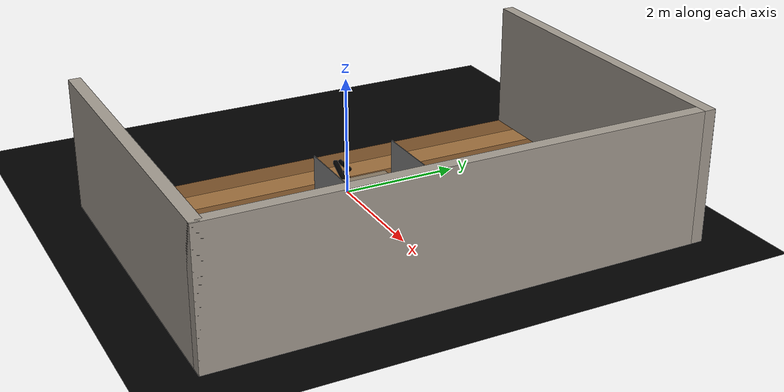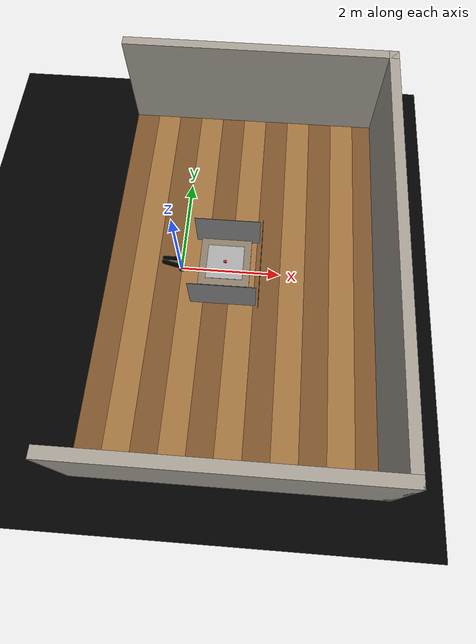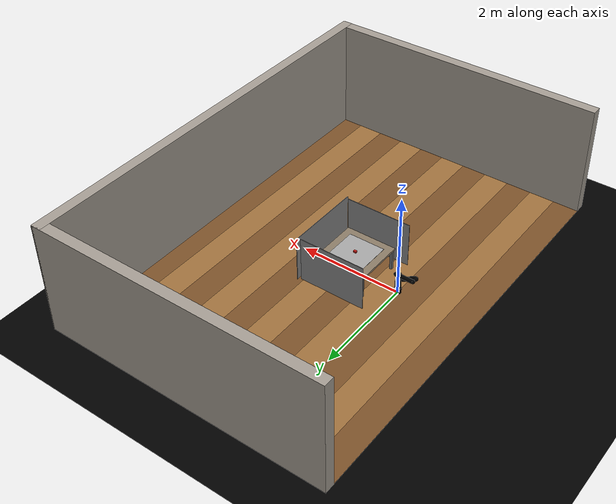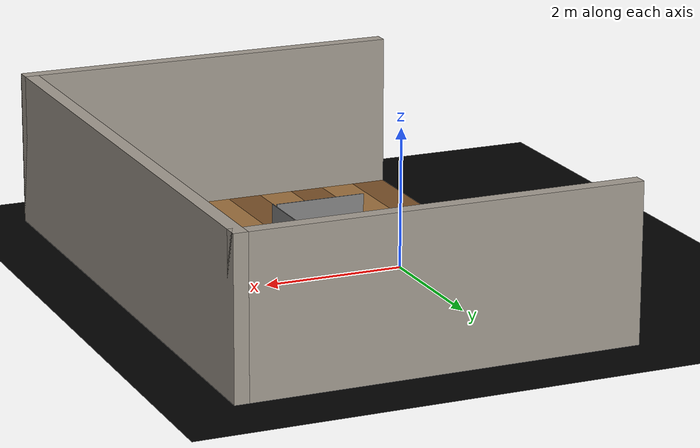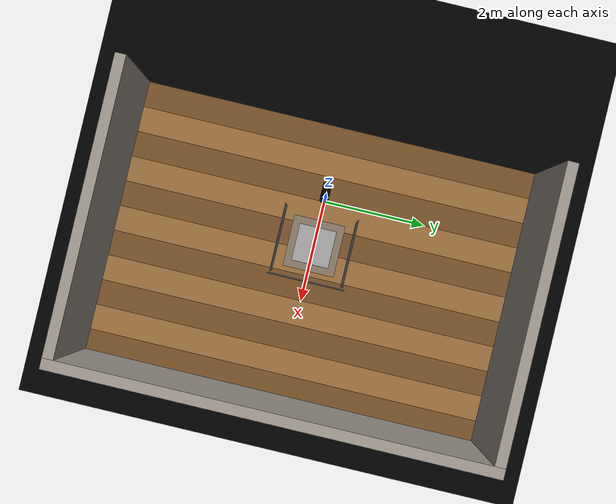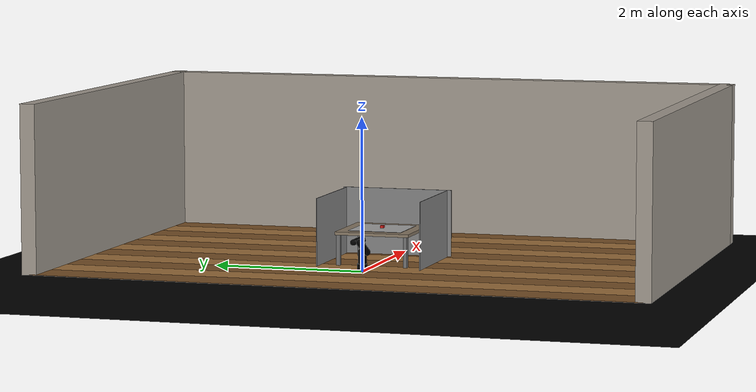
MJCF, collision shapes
<mujoco model="eMeetArm_RL">
  <!-- meshdir 指向描述包 meshes（含 V2 云台 gimbal_v2/ 子目录）；
       原值 "meshes" 指向不存在的 sim/meshes，模型加载即失败 -->
  <compiler meshdir="../../robot_arm_description/meshes" eulerseq="XYZ" angle="radian"/>

  <option timestep="0.002" gravity="0 0 -9.81" integrator="implicitfast"/>

  <visual>
    <headlight diffuse="0.8 0.8 0.8" ambient="0.3 0.3 0.3" specular="0.0 0.0 0.0"/>
    <rgba haze="0.15 0.25 0.35 1"/>
  </visual>

  <asset>
    <mesh name="base_link" file="base_link.STL"/>
    <mesh name="Link1"     file="Link1.STL"/>
    <mesh name="Link2"     file="Link2.STL"/>
    <mesh name="Link3"     file="Link3.STL"/>
    <!-- 云台 V2 网格：**不在任何包里放 STL 或符号链接**，直接跨包相对引用。
         路径基准 = meshdir(../../robot_arm_description/meshes)，上溯 3 级到 src/E7009
         再进 robot_gimbal_V2 包。本文件由 emeet_arm_env.py 从 src/ 直接加载。 -->
    <mesh name="g_base"  file="../../../robot_gimbal_V2/robot_gimbal_description_v2/meshes/gimbal_base_link.STL"/>
    <mesh name="g_Cam1"  file="../../../robot_gimbal_V2/robot_gimbal_description_v2/meshes/Cam1.STL"/>
    <mesh name="g_Tof"   file="../../../robot_gimbal_V2/robot_gimbal_description_v2/meshes/Tof.STL"/>
    <mesh name="g_Link4" file="../../../robot_gimbal_V2/robot_gimbal_description_v2/meshes/Link4.STL"/>
    <mesh name="g_Link5" file="../../../robot_gimbal_V2/robot_gimbal_description_v2/meshes/Link5.STL"/>
    <mesh name="g_Link6" file="../../../robot_gimbal_V2/robot_gimbal_description_v2/meshes/Link6.STL"/>
    <mesh name="g_tool0" file="../../../robot_gimbal_V2/robot_gimbal_description_v2/meshes/tool0.STL"/>
    <mesh name="g_Cam0"  file="../../../robot_gimbal_V2/robot_gimbal_description_v2/meshes/Cam0.STL"/>
    <material name="arm_grey"   rgba="0.898 0.918 0.929 1"/>
    <material name="joint_grey" rgba="0.698 0.698 0.698 1"/>
  </asset>

  <default>
    <joint limited="true"/>
    <default class="visual">
      <geom contype="0" conaffinity="0" group="0"/>
    </default>
    <default class="robot_col">
      <geom contype="2" conaffinity="1" group="3" rgba="0 0 0 0"/>
    </default>
    <default class="world_col">
      <geom contype="1" conaffinity="3" group="0"/>
    </default>
  </default>

  <worldbody>
    <!-- ── Lighting ────────────────────────────────────────────────────────── -->
    <light name="overhead" pos="0.75 0 3.0" dir="0 0 -1"
           diffuse="0.92 0.92 0.88" specular="0.3 0.3 0.3"/>
    <light name="side"     pos="1 1 1.5" dir="-1 -1 -1"
           diffuse="0.4 0.4 0.4"/>
    <light name="fill"     pos="-0.3 0.5 1.2"
           diffuse="0.55 0.55 0.60" specular="0.1 0.1 0.1"
           attenuation="0.3 0.1 0.01" cutoff="5"/>

    <geom name="ground_col" class="world_col" type="plane" size="5 5 0.1" rgba="0 0 0 0"/>

    <!-- ── Wood floor (visual) ──────────────────────────────────────────── -->
    <geom name="plank_d0" type="box" size="0.25 4.0 0.004"
          pos="-1.25 0 0.004" rgba="0.48 0.32 0.16 1" contype="0" conaffinity="0"/>
    <geom name="plank_l0" type="box" size="0.25 4.0 0.004"
          pos="-0.75 0 0.004" rgba="0.62 0.44 0.24 1" contype="0" conaffinity="0"/>
    <geom name="plank_d1" type="box" size="0.25 4.0 0.004"
          pos="-0.25 0 0.004" rgba="0.48 0.32 0.16 1" contype="0" conaffinity="0"/>
    <geom name="plank_l1" type="box" size="0.25 4.0 0.004"
          pos="0.25 0 0.004" rgba="0.62 0.44 0.24 1" contype="0" conaffinity="0"/>
    <geom name="plank_d2" type="box" size="0.25 4.0 0.004"
          pos="0.75 0 0.004" rgba="0.48 0.32 0.16 1" contype="0" conaffinity="0"/>
    <geom name="plank_l2" type="box" size="0.25 4.0 0.004"
          pos="1.25 0 0.004" rgba="0.62 0.44 0.24 1" contype="0" conaffinity="0"/>
    <geom name="plank_d3" type="box" size="0.25 4.0 0.004"
          pos="1.75 0 0.004" rgba="0.48 0.32 0.16 1" contype="0" conaffinity="0"/>
    <geom name="plank_l3" type="box" size="0.25 4.0 0.004"
          pos="2.25 0 0.004" rgba="0.62 0.44 0.24 1" contype="0" conaffinity="0"/>
    <geom name="plank_d4" type="box" size="0.25 4.0 0.004"
          pos="2.75 0 0.004" rgba="0.48 0.32 0.16 1" contype="0" conaffinity="0"/>
    <geom name="plank_l4" type="box" size="0.25 4.0 0.004"
          pos="3.25 0 0.004" rgba="0.62 0.44 0.24 1" contype="0" conaffinity="0"/>
    <geom name="plank_d5" type="box" size="0.25 4.0 0.004"
          pos="3.75 0 0.004" rgba="0.48 0.32 0.16 1" contype="0" conaffinity="0"/>

    <!-- ── Workbench ────────────────────────────────────────────────────── -->
    <body name="workbench" pos="0 0 0">
      <geom name="table_top" class="world_col" type="box" size="0.50 0.50 0.02"
            pos="0.90 0 0.43" rgba="0.54 0.48 0.40 1"/>
      <geom name="leg_fl" class="world_col" type="box" size="0.025 0.025 0.205"
            pos="0.435 -0.455 0.205" rgba="0.45 0.45 0.45 1"/>
      <geom name="leg_fr" class="world_col" type="box" size="0.025 0.025 0.205"
            pos="0.435  0.455 0.205" rgba="0.45 0.45 0.45 1"/>
      <geom name="leg_bl" class="world_col" type="box" size="0.025 0.025 0.205"
            pos="1.365 -0.455 0.205" rgba="0.45 0.45 0.45 1"/>
      <geom name="leg_br" class="world_col" type="box" size="0.025 0.025 0.205"
            pos="1.365  0.455 0.205" rgba="0.45 0.45 0.45 1"/>
    </body>

    <geom name="plate" class="world_col" type="box" size="0.36 0.36 0.0025"
          pos="0.90 0 0.453" rgba="0.65 0.65 0.65 1"/>

    <!-- ── Cloth backdrops ───────────────────────────────────────────────── -->
    <geom name="cloth_back"  type="box" size="0.005 0.75 0.45"
          pos="1.60 0 0.45"    rgba="0.52 0.52 0.52 1" contype="0" conaffinity="0"/>
    <geom name="cloth_left"  type="box" size="0.65 0.005 0.45"
          pos="0.90 -0.70 0.45" rgba="0.52 0.52 0.52 1" contype="0" conaffinity="0"/>
    <geom name="cloth_right" type="box" size="0.65 0.005 0.45"
          pos="0.90  0.70 0.45" rgba="0.52 0.52 0.52 1" contype="0" conaffinity="0"/>

    <!-- ── Walls ─────────────────────────────────────────────────────────── -->
    <geom name="wall_back"  type="box" size="0.10 4.10 1.10"
          pos="4.00 0 1.10"    rgba="0.64 0.61 0.57 1" contype="0" conaffinity="0"/>
    <geom name="wall_left"  type="box" size="2.80 0.10 1.10"
          pos="1.30 -4.00 1.10" rgba="0.64 0.61 0.57 1" contype="0" conaffinity="0"/>
    <geom name="wall_right" type="box" size="2.80 0.10 1.10"
          pos="1.30  4.00 1.10" rgba="0.64 0.61 0.57 1" contype="0" conaffinity="0"/>

    <!-- ── 被摄主体（RL 训练用）──────────────────────────────────────────
         mocap 运动学体：位置由 env 写 data.mocap_pos 直接驱动，
         无物理沉降/倾倒，支持任意运动剧本；不参与碰撞（拍摄任务无接触）。 -->
    <body name="obj_red_box" mocap="true" pos="0.90 0.00 0.47">
      <geom type="box" size="0.03 0.02 0.02" rgba="0.85 0.12 0.10 1"
            contype="0" conaffinity="0"/>
    </body>

    <!-- ── 机械臂 ────────────────────────────────────────────────────────── -->
    <body name="base_link" pos="0 0 0">
      <inertial pos="-1.265e-05 -1.574e-05 0.04528" mass="2.9887"
                fullinertia="0.013686 0.011278 0.022318 6.69e-07 -3.086e-07 -2.269e-07"/>
      <geom class="visual" type="mesh" mesh="base_link" material="arm_grey"/>
      <geom class="robot_col" type="cylinder" size="0.065 0.054" pos="0 0 0.054"/>

      <body name="Link1" pos="0 0 0.1078" euler="0 0 0">
        <inertial pos="-7.439e-05 -0.00743 0.12877" mass="2.3582"
                  fullinertia="0.003838 0.004658 0.002214 7.014e-07 -3.092e-06 -5.300e-04"/>
        <joint name="Joint1" type="hinge" axis="0 0 1" range="-3.1 3.1" damping="1.0"/>
        <geom class="visual" type="mesh" mesh="Link1" material="arm_grey"/>
        <geom class="robot_col" type="capsule" size="0.055" fromto="0 0 0  0 0 0.15"/>

        <!-- euler/range 已按 2026-07-28 实机重标定平移（J2 新零点 = 旧 +0.181 rad），与 URDF 一致。
             注意：重标定前训练的策略在新零点下失效，需重训或在 obs/action 上加偏置。 -->
        <body name="Link2" pos="0 -0.0625 0.1502" euler="1.5708 -0.48869 -3.1416">
          <inertial pos="0.26233 -2.301e-05 0.02928" mass="1.2359"
                    fullinertia="5.211e-04 0.008365 0.008513 1.665e-07 1.289e-05 -2.828e-07"/>
          <joint name="Joint2" type="hinge" axis="0 0 1" range="-0.981 2.959" damping="5.0"/>
          <geom class="visual" type="mesh" mesh="Link2" material="arm_grey"/>
          <geom class="robot_col" type="capsule" size="0.045" fromto="0 0 0  0.35 0 0"/>

          <!-- 同上：J3 新零点 = 旧 -0.176 rad -->
          <body name="Link3" pos="0.35 0 0.089" euler="0 0 2.6579">
            <inertial pos="0.25099 0.00809 -0.02224" mass="0.7526"
                      fullinertia="4.253e-04 0.003230 0.003197 -5.617e-05 -1.500e-06 -5.251e-07"/>
            <joint name="Joint3" type="hinge" axis="0 0 1" range="-2.5 0.02" damping="3.0"/>
            <geom class="visual" type="mesh" mesh="Link3" material="arm_grey"/>
            <geom class="robot_col" type="capsule" size="0.038" fromto="0 0 0  0.34 0 0"/>

          <!-- ══ 臂末端法兰 tool0：Link3 坐标系 +X 300mm（与 URDF tool0_joint 一致）══
               mujoco_node.py 用 body 名 "tool0" 取末端位姿，名字不能改。 -->
          <body name="tool0" pos="0.3 0 0" euler="1.5708 0 0">
            <site name="ee_site" pos="0 0 0" size="0.01" rgba="1 0 0 0.5"/>

            <!-- ══ 云台 V2：gimbal_base_link 与 tool0 重合（零偏移）════════════════
                 以下 pos/euler/range/惯量全部对齐
                 robot_gimbal_description_v2/urdf/gimbal.urdf.xacro -->
            <body name="gimbal_base_link" pos="0 0 0" euler="0 0 0">
              <inertial pos="-2.157e-07 -0.02737 3.447e-06" mass="0.048071"
                        fullinertia="1.747e-05 3.213e-05 4.830e-05 -1.285e-16 1.810e-15 2.124e-09"/>
              <geom class="visual" type="mesh" mesh="g_base" material="joint_grey"/>
              <geom class="robot_col" type="box" size="0.035 0.030 0.020" pos="0 -0.027 0"/>

              <!-- 广角相机（基座固定，link 系即光学系：+Z 光轴 / +Y 下 / +X 右） -->
              <body name="Cam1" pos="0.0627 -0.0205 -0.0125" euler="-1.5708 0 -1.5708">
                <inertial pos="0 0 -0.01452" mass="0.0155948"
                          fullinertia="1.389e-06 1.356e-06 8.025e-07 -1.885e-21 9.244e-22 -1.120e-21"/>
                <geom class="visual" type="mesh" mesh="g_Cam1" material="joint_grey"/>
                <camera name="wide_cam" pos="0 0 0" fovy="70.9" resolution="640 480"
                        xyaxes="1 0 0  0 -1 0"/>
              </body>

              <!-- ToF（基座固定，同光学系约定） -->
              <body name="Tof" pos="0.0441 -0.0537993948510718 -0.0151" euler="-1.5708 0 -1.5708">
                <inertial pos="-5.859e-04 3.648e-05 -0.005234" mass="0.0146204"
                          fullinertia="1.194e-06 1.997e-06 2.957e-06 -5.317e-10 5.714e-09 4.221e-09"/>
                <geom class="visual" type="mesh" mesh="g_Tof" material="joint_grey"/>
              </body>

              <!-- Joint4 = pan / Yaw -->
              <body name="Link4" pos="0 -0.053 -0.008305" euler="-3.14159265358979 0 1.57079632679488">
                <inertial pos="0.016394 0.010716 0.006867" mass="0.0955886"
                          fullinertia="1.3576e-04 1.01596e-04 1.36476e-04 -1.039e-05 2.757e-05 1.495e-05"/>
                <joint name="Joint4" type="hinge" axis="0 0 1" range="-3 3" damping="0.5"/>
                <geom class="visual" type="mesh" mesh="g_Link4" material="joint_grey"/>
                <geom class="robot_col" type="capsule" size="0.022" fromto="0 0 0  0.026 0 0.051"/>

                <!-- Joint5 = roll / Roll -->
                <body name="Link5" pos="0.02585 0 0.051" euler="1.5707963267949 0 -1.5707963267949">
                  <inertial pos="-0.010716 -0.044133 0.009456" mass="0.0955886"
                            fullinertia="1.01596e-04 1.36476e-04 1.3576e-04 -1.495e-05 -1.039e-05 -2.757e-05"/>
                  <joint name="Joint5" type="hinge" axis="0 0 1" range="-1.5 1.5" damping="0.5"/>
                  <geom class="visual" type="mesh" mesh="g_Link5" material="joint_grey"/>
                  <geom class="robot_col" type="capsule" size="0.020" fromto="0 0 0  0.021 0 0.036"/>

                  <!-- Joint6 = tilt / Pitch -->
                  <body name="Link6" pos="0.0207 0 0.0356" euler="3.14159265358979 -1.5707963267949 0">
                    <inertial pos="0 -0.002962 0.002634" mass="0.0132341"
                              fullinertia="1.586e-06 2.576e-06 4.107e-06 7.034e-19 -3.633e-22 -1.183e-09"/>
                    <joint name="Joint6" type="hinge" axis="0 0 -1" range="-1.5 1.5" damping="0.5"/>
                    <geom class="visual" type="mesh" mesh="g_Link6" material="joint_grey"/>
                    <geom class="robot_col" type="sphere" size="0.016" pos="0 0 0"/>

                    <!-- 云台末端安装板（URDF 里叫 gimbal_tool0，避免与臂 tool0 重名） -->
                    <!-- 2026-07-28：坐标系绕自身 Z 转 180°（Cam0 下面补偿回来） -->
                    <body name="gimbal_tool0" pos="0 0.00290293220530091 0.005"
                          euler="-1.5707963268 1.5707963268 0">
                      <inertial pos="-0.002366 0 5.864e-05" mass="0.0132341"
                                fullinertia="4.107e-06 1.586e-06 2.576e-06 3.048e-21 1.183e-09 1.340e-21"/>
                      <geom class="visual" type="mesh" mesh="g_tool0" material="joint_grey"/>

                      <!-- 补偿 gimbal_tool0 的 Rz(180°) + 沿自身 +Z(光轴)前移 20mm -->
                      <body name="Cam0" pos="0.0362 0 -0.0244029322052897"
                            euler="-1.5707963268 0 -1.5707963268">
                        <inertial pos="0 -0.009876 6.829e-04" mass="0.00406799"
                                  fullinertia="4.896e-07 1.322e-07 5.884e-07 -1.936e-21 -3.695e-22 -5.154e-08"/>
                        <geom class="visual" type="mesh" mesh="g_Cam0" material="joint_grey"/>
                        <camera name="ee_cam" pos="0 0 0" fovy="70.9" resolution="640 480"
                                xyaxes="1 0 0  0 -1 0"/>
                      </body>
                    </body>
                  </body>
                </body>
              </body>
            </body>
          </body>
          </body>
        </body>
      </body>
    </body>
  </worldbody>

  <actuator>
    <position name="act_Joint1" joint="Joint1" kp="500" kv="60"/>
    <position name="act_Joint2" joint="Joint2" kp="800" kv="100"/>
    <position name="act_Joint3" joint="Joint3" kp="300" kv="40"/>
    <position name="act_Joint4" joint="Joint4" kp="80"  kv="12"/>
    <position name="act_Joint5" joint="Joint5" kp="50"  kv="8"/>
    <position name="act_Joint6" joint="Joint6" kp="50"  kv="8"/>
  </actuator>

</mujoco>
